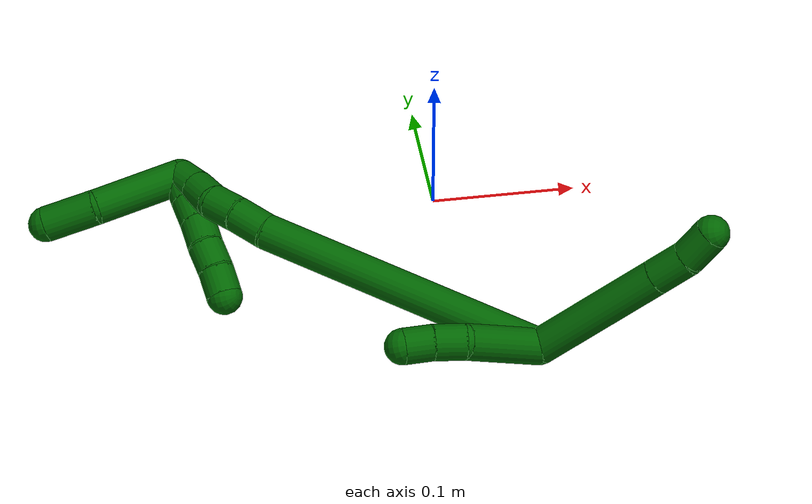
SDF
<sdf version="1.7">
 <world name="default">
  <model name="6">
   <static>0</static>
   <link name="6">
    <collision name="collision-cylinder-e_1_2_8">
     <pose>-0.011944 0.012328 0.04642 -0.259584 -0.243743 0.03197</pose>
     <geometry><cylinder><radius>0.0125</radius><length>0.098984</length></cylinder></geometry>
     <surface>
      <friction><ode><mu>1.16</mu><mu2>1.16</mu2><slip1>0</slip1><slip2>0</slip2></ode></friction>
      <contact><ode><kp>1e+06</kp><kd>1</kd><max_vel>0</max_vel><min_depth>0.001</min_depth></ode></contact>
     </surface>
    </collision>
    <visual name="visual-cylinder-e_1_2_8">
     <pose>-0.011944 0.012328 0.04642 -0.259584 -0.243743 0.03197</pose>
     <geometry><cylinder><radius>0.0125</radius><length>0.098984</length></cylinder></geometry>
     <material><ambient>0 0.392157 0.003922 1</ambient></material>
    </visual>
    <collision name="collision-cylinder-e_2_8_9">
     <pose>-0.027119 0.027907 0.10526 -0.256047 -0.246541 0.031896</pose>
     <geometry><cylinder><radius>0.0125</radius><length>0.026477</length></cylinder></geometry>
     <surface>
      <friction><ode><mu>1.16</mu><mu2>1.16</mu2><slip1>0</slip1><slip2>0</slip2></ode></friction>
      <contact><ode><kp>1e+06</kp><kd>1</kd><max_vel>0</max_vel><min_depth>0.001</min_depth></ode></contact>
     </surface>
    </collision>
    <visual name="visual-cylinder-e_2_8_9">
     <pose>-0.027119 0.027907 0.10526 -0.256047 -0.246541 0.031896</pose>
     <geometry><cylinder><radius>0.0125</radius><length>0.026477</length></cylinder></geometry>
     <material><ambient>0 0.392157 0.003922 1</ambient></material>
    </visual>
    <collision name="collision-cylinder-e_3_9_6">
     <pose>-0.035917 0.034685 0.128029 -0.328324 -0.47089 0.079436</pose>
     <geometry><cylinder><radius>0.0125</radius><length>0.024539</length></cylinder></geometry>
     <surface>
      <friction><ode><mu>1.16</mu><mu2>1.16</mu2><slip1>0</slip1><slip2>0</slip2></ode></friction>
      <contact><ode><kp>1e+06</kp><kd>1</kd><max_vel>0</max_vel><min_depth>0.001</min_depth></ode></contact>
     </surface>
    </collision>
    <visual name="visual-cylinder-e_3_9_6">
     <pose>-0.035917 0.034685 0.128029 -0.328324 -0.47089 0.079436</pose>
     <geometry><cylinder><radius>0.0125</radius><length>0.024539</length></cylinder></geometry>
     <material><ambient>0 0.392157 0.003922 1</ambient></material>
    </visual>
    <collision name="collision-cylinder-e_1_2_10">
     <pose>-0.018376 -0.016683 -0.01404 2.27039 -0.700286 -1.33062</pose>
     <geometry><cylinder><radius>0.0125</radius><length>0.05703</length></cylinder></geometry>
     <surface>
      <friction><ode><mu>1.16</mu><mu2>1.16</mu2><slip1>0</slip1><slip2>0</slip2></ode></friction>
      <contact><ode><kp>1e+06</kp><kd>1</kd><max_vel>0</max_vel><min_depth>0.001</min_depth></ode></contact>
     </surface>
    </collision>
    <visual name="visual-cylinder-e_1_2_10">
     <pose>-0.018376 -0.016683 -0.01404 2.27039 -0.700286 -1.33062</pose>
     <geometry><cylinder><radius>0.0125</radius><length>0.05703</length></cylinder></geometry>
     <material><ambient>0 0.392157 0.003922 1</ambient></material>
    </visual>
    <collision name="collision-cylinder-e_2_10_11">
     <pose>-0.042046 -0.03834 -0.036511 2.60847 -0.495686 -1.49474</pose>
     <geometry><cylinder><radius>0.0125</radius><length>0.022258</length></cylinder></geometry>
     <surface>
      <friction><ode><mu>1.16</mu><mu2>1.16</mu2><slip1>0</slip1><slip2>0</slip2></ode></friction>
      <contact><ode><kp>1e+06</kp><kd>1</kd><max_vel>0</max_vel><min_depth>0.001</min_depth></ode></contact>
     </surface>
    </collision>
    <visual name="visual-cylinder-e_2_10_11">
     <pose>-0.042046 -0.03834 -0.036511 2.60847 -0.495686 -1.49474</pose>
     <geometry><cylinder><radius>0.0125</radius><length>0.022258</length></cylinder></geometry>
     <material><ambient>0 0.392157 0.003922 1</ambient></material>
    </visual>
    <collision name="collision-cylinder-e_3_11_5">
     <pose>-0.051563 -0.048876 -0.052589 2.51286 -0.420163 -1.16086</pose>
     <geometry><cylinder><radius>0.0125</radius><length>0.020712</length></cylinder></geometry>
     <surface>
      <friction><ode><mu>1.16</mu><mu2>1.16</mu2><slip1>0</slip1><slip2>0</slip2></ode></friction>
      <contact><ode><kp>1e+06</kp><kd>1</kd><max_vel>0</max_vel><min_depth>0.001</min_depth></ode></contact>
     </surface>
    </collision>
    <visual name="visual-cylinder-e_3_11_5">
     <pose>-0.051563 -0.048876 -0.052589 2.51286 -0.420163 -1.16086</pose>
     <geometry><cylinder><radius>0.0125</radius><length>0.020712</length></cylinder></geometry>
     <material><ambient>0 0.392157 0.003922 1</ambient></material>
    </visual>
    <collision name="collision-cylinder-e_1_2_12">
     <pose>-0.054794 0.015308 -0.088345 -2.97002 -0.548561 2.54835</pose>
     <geometry><cylinder><radius>0.0125</radius><length>0.210158</length></cylinder></geometry>
     <surface>
      <friction><ode><mu>1.16</mu><mu2>1.16</mu2><slip1>0</slip1><slip2>0</slip2></ode></friction>
      <contact><ode><kp>1e+06</kp><kd>1</kd><max_vel>0</max_vel><min_depth>0.001</min_depth></ode></contact>
     </surface>
    </collision>
    <visual name="visual-cylinder-e_1_2_12">
     <pose>-0.054794 0.015308 -0.088345 -2.97002 -0.548561 2.54835</pose>
     <geometry><cylinder><radius>0.0125</radius><length>0.210158</length></cylinder></geometry>
     <material><ambient>0 0.392157 0.003922 1</ambient></material>
    </visual>
    <collision name="collision-cylinder-e_2_12_13">
     <pose>-0.115933 0.034593 -0.186905 -2.77042 -0.524647 1.9212</pose>
     <geometry><cylinder><radius>0.0125</radius><length>0.025332</length></cylinder></geometry>
     <surface>
      <friction><ode><mu>1.16</mu><mu2>1.16</mu2><slip1>0</slip1><slip2>0</slip2></ode></friction>
      <contact><ode><kp>1e+06</kp><kd>1</kd><max_vel>0</max_vel><min_depth>0.001</min_depth></ode></contact>
     </surface>
    </collision>
    <visual name="visual-cylinder-e_2_12_13">
     <pose>-0.115933 0.034593 -0.186905 -2.77042 -0.524647 1.9212</pose>
     <geometry><cylinder><radius>0.0125</radius><length>0.025332</length></cylinder></geometry>
     <material><ambient>0 0.392157 0.003922 1</ambient></material>
    </visual>
    <collision name="collision-cylinder-e_3_13_14">
     <pose>-0.12666 0.042543 -0.206675 -2.74733 -0.400583 1.58713</pose>
     <geometry><cylinder><radius>0.0125</radius><length>0.022474</length></cylinder></geometry>
     <surface>
      <friction><ode><mu>1.16</mu><mu2>1.16</mu2><slip1>0</slip1><slip2>0</slip2></ode></friction>
      <contact><ode><kp>1e+06</kp><kd>1</kd><max_vel>0</max_vel><min_depth>0.001</min_depth></ode></contact>
     </surface>
    </collision>
    <visual name="visual-cylinder-e_3_13_14">
     <pose>-0.12666 0.042543 -0.206675 -2.74733 -0.400583 1.58713</pose>
     <geometry><cylinder><radius>0.0125</radius><length>0.022474</length></cylinder></geometry>
     <material><ambient>0 0.392157 0.003922 1</ambient></material>
    </visual>
    <collision name="collision-cylinder-e_4_14_15">
     <pose>-0.133403 0.05337 -0.224502 -2.44996 -0.216356 0.585526</pose>
     <geometry><cylinder><radius>0.0125</radius><length>0.021998</length></cylinder></geometry>
     <surface>
      <friction><ode><mu>1.16</mu><mu2>1.16</mu2><slip1>0</slip1><slip2>0</slip2></ode></friction>
      <contact><ode><kp>1e+06</kp><kd>1</kd><max_vel>0</max_vel><min_depth>0.001</min_depth></ode></contact>
     </surface>
    </collision>
    <visual name="visual-cylinder-e_4_14_15">
     <pose>-0.133403 0.05337 -0.224502 -2.44996 -0.216356 0.585526</pose>
     <geometry><cylinder><radius>0.0125</radius><length>0.021998</length></cylinder></geometry>
     <material><ambient>0 0.392157 0.003922 1</ambient></material>
    </visual>
    <collision name="collision-cylinder-e_5_15_1">
     <pose>-0.138324 0.065486 -0.240907 -2.56693 -0.2584 0.828445</pose>
     <geometry><cylinder><radius>0.0125</radius><length>0.020039</length></cylinder></geometry>
     <surface>
      <friction><ode><mu>1.16</mu><mu2>1.16</mu2><slip1>0</slip1><slip2>0</slip2></ode></friction>
      <contact><ode><kp>1e+06</kp><kd>1</kd><max_vel>0</max_vel><min_depth>0.001</min_depth></ode></contact>
     </surface>
    </collision>
    <visual name="visual-cylinder-e_5_15_1">
     <pose>-0.138324 0.065486 -0.240907 -2.56693 -0.2584 0.828445</pose>
     <geometry><cylinder><radius>0.0125</radius><length>0.020039</length></cylinder></geometry>
     <material><ambient>0 0.392157 0.003922 1</ambient></material>
    </visual>
    <collision name="collision-cylinder-e_1_1_16">
     <pose>-0.147544 0.050723 -0.272276 2.43024 -0.213771 -0.562362</pose>
     <geometry><cylinder><radius>0.0125</radius><length>0.062786</length></cylinder></geometry>
     <surface>
      <friction><ode><mu>1.16</mu><mu2>1.16</mu2><slip1>0</slip1><slip2>0</slip2></ode></friction>
      <contact><ode><kp>1e+06</kp><kd>1</kd><max_vel>0</max_vel><min_depth>0.001</min_depth></ode></contact>
     </surface>
    </collision>
    <visual name="visual-cylinder-e_1_1_16">
     <pose>-0.147544 0.050723 -0.272276 2.43024 -0.213771 -0.562362</pose>
     <geometry><cylinder><radius>0.0125</radius><length>0.062786</length></cylinder></geometry>
     <material><ambient>0 0.392157 0.003922 1</ambient></material>
    </visual>
    <collision name="collision-cylinder-e_2_16_4">
     <pose>-0.155794 0.023237 -0.312488 2.72765 -0.085556 -0.402195</pose>
     <geometry><cylinder><radius>0.0125</radius><length>0.037214</length></cylinder></geometry>
     <surface>
      <friction><ode><mu>1.16</mu><mu2>1.16</mu2><slip1>0</slip1><slip2>0</slip2></ode></friction>
      <contact><ode><kp>1e+06</kp><kd>1</kd><max_vel>0</max_vel><min_depth>0.001</min_depth></ode></contact>
     </surface>
    </collision>
    <visual name="visual-cylinder-e_2_16_4">
     <pose>-0.155794 0.023237 -0.312488 2.72765 -0.085556 -0.402195</pose>
     <geometry><cylinder><radius>0.0125</radius><length>0.037214</length></cylinder></geometry>
     <material><ambient>0 0.392157 0.003922 1</ambient></material>
    </visual>
    <collision name="collision-cylinder-e_1_1_17">
     <pose>-0.135046 0.06356 -0.24527 1.08822 0.623478 0.385105</pose>
     <geometry><cylinder><radius>0.0125</radius><length>0.02</length></cylinder></geometry>
     <surface>
      <friction><ode><mu>1.16</mu><mu2>1.16</mu2><slip1>0</slip1><slip2>0</slip2></ode></friction>
      <contact><ode><kp>1e+06</kp><kd>1</kd><max_vel>0</max_vel><min_depth>0.001</min_depth></ode></contact>
     </surface>
    </collision>
    <visual name="visual-cylinder-e_1_1_17">
     <pose>-0.135046 0.06356 -0.24527 1.08822 0.623478 0.385105</pose>
     <geometry><cylinder><radius>0.0125</radius><length>0.02</length></cylinder></geometry>
     <material><ambient>0 0.392157 0.003922 1</ambient></material>
    </visual>
    <collision name="collision-cylinder-e_2_17_18">
     <pose>-0.124319 0.048846 -0.237086 1.03987 0.510777 0.296738</pose>
     <geometry><cylinder><radius>0.0125</radius><length>0.02</length></cylinder></geometry>
     <surface>
      <friction><ode><mu>1.16</mu><mu2>1.16</mu2><slip1>0</slip1><slip2>0</slip2></ode></friction>
      <contact><ode><kp>1e+06</kp><kd>1</kd><max_vel>0</max_vel><min_depth>0.001</min_depth></ode></contact>
     </surface>
    </collision>
    <visual name="visual-cylinder-e_2_17_18">
     <pose>-0.124319 0.048846 -0.237086 1.03987 0.510777 0.296738</pose>
     <geometry><cylinder><radius>0.0125</radius><length>0.02</length></cylinder></geometry>
     <material><ambient>0 0.392157 0.003922 1</ambient></material>
    </visual>
    <collision name="collision-cylinder-e_3_18_19">
     <pose>-0.114484 0.033546 -0.228788 1.10803 0.517353 0.324513</pose>
     <geometry><cylinder><radius>0.0125</radius><length>0.02</length></cylinder></geometry>
     <surface>
      <friction><ode><mu>1.16</mu><mu2>1.16</mu2><slip1>0</slip1><slip2>0</slip2></ode></friction>
      <contact><ode><kp>1e+06</kp><kd>1</kd><max_vel>0</max_vel><min_depth>0.001</min_depth></ode></contact>
     </surface>
    </collision>
    <visual name="visual-cylinder-e_3_18_19">
     <pose>-0.114484 0.033546 -0.228788 1.10803 0.517353 0.324513</pose>
     <geometry><cylinder><radius>0.0125</radius><length>0.02</length></cylinder></geometry>
     <material><ambient>0 0.392157 0.003922 1</ambient></material>
    </visual>
    <collision name="collision-cylinder-e_4_19_20">
     <pose>-0.103452 0.018916 -0.22091 1.04262 0.65435 0.384977</pose>
     <geometry><cylinder><radius>0.0125</radius><length>0.02</length></cylinder></geometry>
     <surface>
      <friction><ode><mu>1.16</mu><mu2>1.16</mu2><slip1>0</slip1><slip2>0</slip2></ode></friction>
      <contact><ode><kp>1e+06</kp><kd>1</kd><max_vel>0</max_vel><min_depth>0.001</min_depth></ode></contact>
     </surface>
    </collision>
    <visual name="visual-cylinder-e_4_19_20">
     <pose>-0.103452 0.018916 -0.22091 1.04262 0.65435 0.384977</pose>
     <geometry><cylinder><radius>0.0125</radius><length>0.02</length></cylinder></geometry>
     <material><ambient>0 0.392157 0.003922 1</ambient></material>
    </visual>
    <collision name="collision-cylinder-e_5_20_3">
     <pose>-0.090738 0.005175 -0.213974 1.16767 0.72455 0.490695</pose>
     <geometry><cylinder><radius>0.0125</radius><length>0.02</length></cylinder></geometry>
     <surface>
      <friction><ode><mu>1.16</mu><mu2>1.16</mu2><slip1>0</slip1><slip2>0</slip2></ode></friction>
      <contact><ode><kp>1e+06</kp><kd>1</kd><max_vel>0</max_vel><min_depth>0.001</min_depth></ode></contact>
     </surface>
    </collision>
    <visual name="visual-cylinder-e_5_20_3">
     <pose>-0.090738 0.005175 -0.213974 1.16767 0.72455 0.490695</pose>
     <geometry><cylinder><radius>0.0125</radius><length>0.02</length></cylinder></geometry>
     <material><ambient>0 0.392157 0.003922 1</ambient></material>
    </visual>
    <collision name="collision-sphere-3">
     <pose>-0.08411 -0.001713 -0.211036 0 -0 0</pose>
     <geometry><sphere><radius>0.0125</radius></sphere></geometry>
     <surface>
      <friction><ode><mu>1.16</mu><mu2>1.16</mu2><slip1>0</slip1><slip2>0</slip2></ode></friction>
      <contact><ode><kp>1e+06</kp><kd>1</kd><max_vel>0</max_vel><min_depth>0.001</min_depth></ode></contact>
     </surface>
    </collision>
    <visual name="visual-sphere-3">
     <pose>-0.08411 -0.001713 -0.211036 0 -0 0</pose>
     <geometry><sphere><radius>0.0125</radius></sphere></geometry>
     <material><ambient>0 0.392157 0.003922 1</ambient></material>
    </visual>
    <collision name="collision-sphere-20">
     <pose>-0.097366 0.012063 -0.216911 0 -0 0</pose>
     <geometry><sphere><radius>0.0125</radius></sphere></geometry>
     <surface>
      <friction><ode><mu>1.16</mu><mu2>1.16</mu2><slip1>0</slip1><slip2>0</slip2></ode></friction>
      <contact><ode><kp>1e+06</kp><kd>1</kd><max_vel>0</max_vel><min_depth>0.001</min_depth></ode></contact>
     </surface>
    </collision>
    <visual name="visual-sphere-20">
     <pose>-0.097366 0.012063 -0.216911 0 -0 0</pose>
     <geometry><sphere><radius>0.0125</radius></sphere></geometry>
     <material><ambient>0 0.392157 0.003922 1</ambient></material>
    </visual>
    <collision name="collision-sphere-19">
     <pose>-0.109538 0.025769 -0.224908 0 -0 0</pose>
     <geometry><sphere><radius>0.0125</radius></sphere></geometry>
     <surface>
      <friction><ode><mu>1.16</mu><mu2>1.16</mu2><slip1>0</slip1><slip2>0</slip2></ode></friction>
      <contact><ode><kp>1e+06</kp><kd>1</kd><max_vel>0</max_vel><min_depth>0.001</min_depth></ode></contact>
     </surface>
    </collision>
    <visual name="visual-sphere-19">
     <pose>-0.109538 0.025769 -0.224908 0 -0 0</pose>
     <geometry><sphere><radius>0.0125</radius></sphere></geometry>
     <material><ambient>0 0.392157 0.003922 1</ambient></material>
    </visual>
    <collision name="collision-sphere-11">
     <pose>-0.047339 -0.043316 -0.044942 0 -0 0</pose>
     <geometry><sphere><radius>0.0125</radius></sphere></geometry>
     <surface>
      <friction><ode><mu>1.16</mu><mu2>1.16</mu2><slip1>0</slip1><slip2>0</slip2></ode></friction>
      <contact><ode><kp>1e+06</kp><kd>1</kd><max_vel>0</max_vel><min_depth>0.001</min_depth></ode></contact>
     </surface>
    </collision>
    <visual name="visual-sphere-11">
     <pose>-0.047339 -0.043316 -0.044942 0 -0 0</pose>
     <geometry><sphere><radius>0.0125</radius></sphere></geometry>
     <material><ambient>0 0.392157 0.003922 1</ambient></material>
    </visual>
    <collision name="collision-sphere-10">
     <pose>-0.036752 -0.033365 -0.02808 0 -0 0</pose>
     <geometry><sphere><radius>0.0125</radius></sphere></geometry>
     <surface>
      <friction><ode><mu>1.16</mu><mu2>1.16</mu2><slip1>0</slip1><slip2>0</slip2></ode></friction>
      <contact><ode><kp>1e+06</kp><kd>1</kd><max_vel>0</max_vel><min_depth>0.001</min_depth></ode></contact>
     </surface>
    </collision>
    <visual name="visual-sphere-10">
     <pose>-0.036752 -0.033365 -0.02808 0 -0 0</pose>
     <geometry><sphere><radius>0.0125</radius></sphere></geometry>
     <material><ambient>0 0.392157 0.003922 1</ambient></material>
    </visual>
    <collision name="collision-sphere-6">
     <pose>-0.041483 0.03821 0.138379 0 -0 0</pose>
     <geometry><sphere><radius>0.0125</radius></sphere></geometry>
     <surface>
      <friction><ode><mu>1.16</mu><mu2>1.16</mu2><slip1>0</slip1><slip2>0</slip2></ode></friction>
      <contact><ode><kp>1e+06</kp><kd>1</kd><max_vel>0</max_vel><min_depth>0.001</min_depth></ode></contact>
     </surface>
    </collision>
    <visual name="visual-sphere-6">
     <pose>-0.041483 0.03821 0.138379 0 -0 0</pose>
     <geometry><sphere><radius>0.0125</radius></sphere></geometry>
     <material><ambient>0 0.392157 0.003922 1</ambient></material>
    </visual>
    <collision name="collision-sphere-9">
     <pose>-0.03035 0.031159 0.117679 0 -0 0</pose>
     <geometry><sphere><radius>0.0125</radius></sphere></geometry>
     <surface>
      <friction><ode><mu>1.16</mu><mu2>1.16</mu2><slip1>0</slip1><slip2>0</slip2></ode></friction>
      <contact><ode><kp>1e+06</kp><kd>1</kd><max_vel>0</max_vel><min_depth>0.001</min_depth></ode></contact>
     </surface>
    </collision>
    <visual name="visual-sphere-9">
     <pose>-0.03035 0.031159 0.117679 0 -0 0</pose>
     <geometry><sphere><radius>0.0125</radius></sphere></geometry>
     <material><ambient>0 0.392157 0.003922 1</ambient></material>
    </visual>
    <collision name="collision-sphere-2">
     <geometry><sphere><radius>0.0125</radius></sphere></geometry>
     <surface>
      <friction><ode><mu>1.16</mu><mu2>1.16</mu2><slip1>0</slip1><slip2>0</slip2></ode></friction>
      <contact><ode><kp>1e+06</kp><kd>1</kd><max_vel>0</max_vel><min_depth>0.001</min_depth></ode></contact>
     </surface>
    </collision>
    <visual name="visual-sphere-2">
     <geometry><sphere><radius>0.0125</radius></sphere></geometry>
     <material><ambient>0 0.392157 0.003922 1</ambient></material>
    </visual>
    <collision name="collision-sphere-8">
     <pose>-0.023888 0.024656 0.09284 0 -0 0</pose>
     <geometry><sphere><radius>0.0125</radius></sphere></geometry>
     <surface>
      <friction><ode><mu>1.16</mu><mu2>1.16</mu2><slip1>0</slip1><slip2>0</slip2></ode></friction>
      <contact><ode><kp>1e+06</kp><kd>1</kd><max_vel>0</max_vel><min_depth>0.001</min_depth></ode></contact>
     </surface>
    </collision>
    <visual name="visual-sphere-8">
     <pose>-0.023888 0.024656 0.09284 0 -0 0</pose>
     <geometry><sphere><radius>0.0125</radius></sphere></geometry>
     <material><ambient>0 0.392157 0.003922 1</ambient></material>
    </visual>
    <collision name="collision-sphere-5">
     <pose>-0.055788 -0.054437 -0.060236 0 -0 0</pose>
     <geometry><sphere><radius>0.0125</radius></sphere></geometry>
     <surface>
      <friction><ode><mu>1.16</mu><mu2>1.16</mu2><slip1>0</slip1><slip2>0</slip2></ode></friction>
      <contact><ode><kp>1e+06</kp><kd>1</kd><max_vel>0</max_vel><min_depth>0.001</min_depth></ode></contact>
     </surface>
    </collision>
    <visual name="visual-sphere-5">
     <pose>-0.055788 -0.054437 -0.060236 0 -0 0</pose>
     <geometry><sphere><radius>0.0125</radius></sphere></geometry>
     <material><ambient>0 0.392157 0.003922 1</ambient></material>
    </visual>
    <collision name="collision-sphere-12">
     <pose>-0.109589 0.030616 -0.176689 0 -0 0</pose>
     <geometry><sphere><radius>0.0125</radius></sphere></geometry>
     <surface>
      <friction><ode><mu>1.16</mu><mu2>1.16</mu2><slip1>0</slip1><slip2>0</slip2></ode></friction>
      <contact><ode><kp>1e+06</kp><kd>1</kd><max_vel>0</max_vel><min_depth>0.001</min_depth></ode></contact>
     </surface>
    </collision>
    <visual name="visual-sphere-12">
     <pose>-0.109589 0.030616 -0.176689 0 -0 0</pose>
     <geometry><sphere><radius>0.0125</radius></sphere></geometry>
     <material><ambient>0 0.392157 0.003922 1</ambient></material>
    </visual>
    <collision name="collision-sphere-13">
     <pose>-0.122278 0.038569 -0.197121 0 -0 0</pose>
     <geometry><sphere><radius>0.0125</radius></sphere></geometry>
     <surface>
      <friction><ode><mu>1.16</mu><mu2>1.16</mu2><slip1>0</slip1><slip2>0</slip2></ode></friction>
      <contact><ode><kp>1e+06</kp><kd>1</kd><max_vel>0</max_vel><min_depth>0.001</min_depth></ode></contact>
     </surface>
    </collision>
    <visual name="visual-sphere-13">
     <pose>-0.122278 0.038569 -0.197121 0 -0 0</pose>
     <geometry><sphere><radius>0.0125</radius></sphere></geometry>
     <material><ambient>0 0.392157 0.003922 1</ambient></material>
    </visual>
    <collision name="collision-sphere-14">
     <pose>-0.131042 0.046518 -0.216228 0 -0 0</pose>
     <geometry><sphere><radius>0.0125</radius></sphere></geometry>
     <surface>
      <friction><ode><mu>1.16</mu><mu2>1.16</mu2><slip1>0</slip1><slip2>0</slip2></ode></friction>
      <contact><ode><kp>1e+06</kp><kd>1</kd><max_vel>0</max_vel><min_depth>0.001</min_depth></ode></contact>
     </surface>
    </collision>
    <visual name="visual-sphere-14">
     <pose>-0.131042 0.046518 -0.216228 0 -0 0</pose>
     <geometry><sphere><radius>0.0125</radius></sphere></geometry>
     <material><ambient>0 0.392157 0.003922 1</ambient></material>
    </visual>
    <collision name="collision-sphere-15">
     <pose>-0.135764 0.060221 -0.232776 0 -0 0</pose>
     <geometry><sphere><radius>0.0125</radius></sphere></geometry>
     <surface>
      <friction><ode><mu>1.16</mu><mu2>1.16</mu2><slip1>0</slip1><slip2>0</slip2></ode></friction>
      <contact><ode><kp>1e+06</kp><kd>1</kd><max_vel>0</max_vel><min_depth>0.001</min_depth></ode></contact>
     </surface>
    </collision>
    <visual name="visual-sphere-15">
     <pose>-0.135764 0.060221 -0.232776 0 -0 0</pose>
     <geometry><sphere><radius>0.0125</radius></sphere></geometry>
     <material><ambient>0 0.392157 0.003922 1</ambient></material>
    </visual>
    <collision name="collision-sphere-1">
     <pose>-0.140884 0.070752 -0.249038 0 -0 0</pose>
     <geometry><sphere><radius>0.0125</radius></sphere></geometry>
     <surface>
      <friction><ode><mu>1.16</mu><mu2>1.16</mu2><slip1>0</slip1><slip2>0</slip2></ode></friction>
      <contact><ode><kp>1e+06</kp><kd>1</kd><max_vel>0</max_vel><min_depth>0.001</min_depth></ode></contact>
     </surface>
    </collision>
    <visual name="visual-sphere-1">
     <pose>-0.140884 0.070752 -0.249038 0 -0 0</pose>
     <geometry><sphere><radius>0.0125</radius></sphere></geometry>
     <material><ambient>0 0.392157 0.003922 1</ambient></material>
    </visual>
    <collision name="collision-sphere-18">
     <pose>-0.11943 0.041323 -0.232668 0 -0 0</pose>
     <geometry><sphere><radius>0.0125</radius></sphere></geometry>
     <surface>
      <friction><ode><mu>1.16</mu><mu2>1.16</mu2><slip1>0</slip1><slip2>0</slip2></ode></friction>
      <contact><ode><kp>1e+06</kp><kd>1</kd><max_vel>0</max_vel><min_depth>0.001</min_depth></ode></contact>
     </surface>
    </collision>
    <visual name="visual-sphere-18">
     <pose>-0.11943 0.041323 -0.232668 0 -0 0</pose>
     <geometry><sphere><radius>0.0125</radius></sphere></geometry>
     <material><ambient>0 0.392157 0.003922 1</ambient></material>
    </visual>
    <collision name="collision-sphere-16">
     <pose>-0.154204 0.030694 -0.295515 0 -0 0</pose>
     <geometry><sphere><radius>0.0125</radius></sphere></geometry>
     <surface>
      <friction><ode><mu>1.16</mu><mu2>1.16</mu2><slip1>0</slip1><slip2>0</slip2></ode></friction>
      <contact><ode><kp>1e+06</kp><kd>1</kd><max_vel>0</max_vel><min_depth>0.001</min_depth></ode></contact>
     </surface>
    </collision>
    <visual name="visual-sphere-16">
     <pose>-0.154204 0.030694 -0.295515 0 -0 0</pose>
     <geometry><sphere><radius>0.0125</radius></sphere></geometry>
     <material><ambient>0 0.392157 0.003922 1</ambient></material>
    </visual>
    <collision name="collision-sphere-4">
     <pose>-0.157384 0.015781 -0.329461 0 -0 0</pose>
     <geometry><sphere><radius>0.0125</radius></sphere></geometry>
     <surface>
      <friction><ode><mu>1.16</mu><mu2>1.16</mu2><slip1>0</slip1><slip2>0</slip2></ode></friction>
      <contact><ode><kp>1e+06</kp><kd>1</kd><max_vel>0</max_vel><min_depth>0.001</min_depth></ode></contact>
     </surface>
    </collision>
    <visual name="visual-sphere-4">
     <pose>-0.157384 0.015781 -0.329461 0 -0 0</pose>
     <geometry><sphere><radius>0.0125</radius></sphere></geometry>
     <material><ambient>0 0.392157 0.003922 1</ambient></material>
    </visual>
    <collision name="collision-sphere-17">
     <pose>-0.129207 0.056369 -0.241503 0 -0 0</pose>
     <geometry><sphere><radius>0.0125</radius></sphere></geometry>
     <surface>
      <friction><ode><mu>1.16</mu><mu2>1.16</mu2><slip1>0</slip1><slip2>0</slip2></ode></friction>
      <contact><ode><kp>1e+06</kp><kd>1</kd><max_vel>0</max_vel><min_depth>0.001</min_depth></ode></contact>
     </surface>
    </collision>
    <visual name="visual-sphere-17">
     <pose>-0.129207 0.056369 -0.241503 0 -0 0</pose>
     <geometry><sphere><radius>0.0125</radius></sphere></geometry>
     <material><ambient>0 0.392157 0.003922 1</ambient></material>
    </visual>
    <inertial>
     <pose>-0.073681 0.019972 -0.108714 0 -0 0</pose>
     <mass>0.75</mass>
     <inertia>
      <ixx>-9.3e-05</ixx>
      <ixy>0</ixy>
      <ixz>0</ixz>
      <iyy>0.001104</iyy>
      <iyz>0</iyz>
      <izz>0.000325</izz>
     </inertia>
    </inertial>
   </link>
   <pose>0.040243 -0.201164 0.029277 0.058098 1.11267 -0.432498</pose>
  </model>
 </world>
</sdf>
